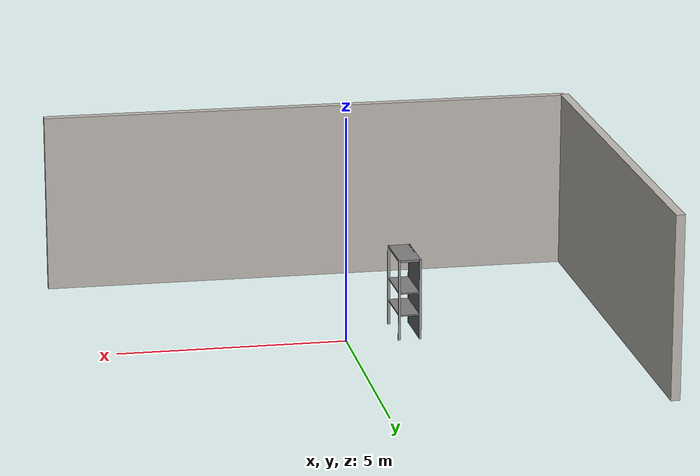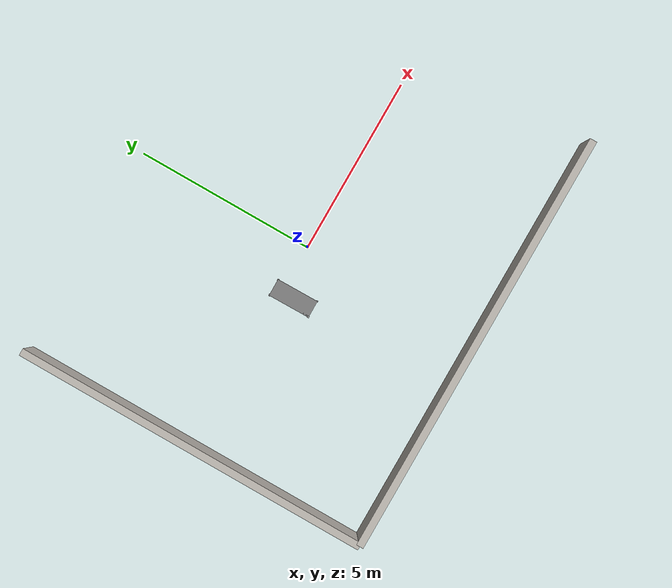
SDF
<sdf version="1.10">
 <world name="warehouse">
  <model name="wall_south">
   <static>true</static>
   <pose>0 -5 2 0 0 0</pose>
   <link name="link">
    <visual name="visual">
     <geometry><box><size>12 0.20000000000000001 4</size></box></geometry>
     <material>
      <ambient>0.75 0.730000019 0.699999988 1</ambient>
      <diffuse>0.75 0.730000019 0.699999988 1</diffuse>
     </material>
    </visual>
    <collision name="collision"><geometry><box><size>12 0.20000000000000001 4</size></box></geometry></collision>
    <inertial>
     <mass>1</mass>
     <inertia><ixx>1</ixx><ixy>0</ixy><ixz>0</ixz><iyy>1</iyy><iyz>0</iyz><izz>1</izz></inertia>
    </inertial>
   </link>
  </model>
  <model name="wall_west">
   <static>true</static>
   <pose>-6 0 2 0 0 0</pose>
   <link name="link">
    <visual name="visual">
     <geometry><box><size>0.20000000000000001 10 4</size></box></geometry>
     <material>
      <ambient>0.75 0.730000019 0.699999988 1</ambient>
      <diffuse>0.75 0.730000019 0.699999988 1</diffuse>
     </material>
    </visual>
    <collision name="collision"><geometry><box><size>0.20000000000000001 10 4</size></box></geometry></collision>
    <inertial>
     <mass>1</mass>
     <inertia><ixx>1</ixx><ixy>0</ixy><ixz>0</ixz><iyy>1</iyy><iyz>0</iyz><izz>1</izz></inertia>
    </inertial>
   </link>
  </model>
  <model name="storage_rack">
   <static>true</static>
   <pose>-1.3448635339736938 -0.34401866793632507 0.04240914061665535 0.0004822450011842844 -0.0034001599457041069 1.5816000039693581</pose>
   <link name="link">
    <visual name="upright_FL">
     <pose>0.57999999999999996 0.23000000000000001 0.90000000000000002 0 0 0</pose>
     <geometry><box><size>0.050000000000000003 0.050000000000000003 1.8</size></box></geometry>
     <material>
      <ambient>0.550000012 0.550000012 0.550000012 1</ambient>
      <diffuse>0.600000024 0.600000024 0.600000024 1</diffuse>
     </material>
    </visual>
    <collision name="upright_FL_col">
     <pose>0.57999999999999996 0.23000000000000001 0.90000000000000002 0 0 0</pose>
     <geometry><box><size>0.050000000000000003 0.050000000000000003 1.8</size></box></geometry>
    </collision>
    <visual name="upright_FR">
     <pose>0.57999999999999996 -0.23000000000000001 0.90000000000000002 0 0 0</pose>
     <geometry><box><size>0.050000000000000003 0.050000000000000003 1.8</size></box></geometry>
     <material>
      <ambient>0.550000012 0.550000012 0.550000012 1</ambient>
      <diffuse>0.600000024 0.600000024 0.600000024 1</diffuse>
     </material>
    </visual>
    <collision name="upright_FR_col">
     <pose>0.57999999999999996 -0.23000000000000001 0.90000000000000002 0 0 0</pose>
     <geometry><box><size>0.050000000000000003 0.050000000000000003 1.8</size></box></geometry>
    </collision>
    <visual name="upright_BL">
     <pose>-0.57999999999999996 0.23000000000000001 0.90000000000000002 0 0 0</pose>
     <geometry><box><size>0.050000000000000003 0.050000000000000003 1.8</size></box></geometry>
     <material>
      <ambient>0.550000012 0.550000012 0.550000012 1</ambient>
      <diffuse>0.600000024 0.600000024 0.600000024 1</diffuse>
     </material>
    </visual>
    <collision name="upright_BL_col">
     <pose>-0.57999999999999996 0.23000000000000001 0.90000000000000002 0 0 0</pose>
     <geometry><box><size>0.050000000000000003 0.050000000000000003 1.8</size></box></geometry>
    </collision>
    <visual name="upright_BR">
     <pose>-0.57999999999999996 -0.23000000000000001 0.90000000000000002 0 0 0</pose>
     <geometry><box><size>0.050000000000000003 0.050000000000000003 1.8</size></box></geometry>
     <material>
      <ambient>0.550000012 0.550000012 0.550000012 1</ambient>
      <diffuse>0.600000024 0.600000024 0.600000024 1</diffuse>
     </material>
    </visual>
    <collision name="upright_BR_col">
     <pose>-0.57999999999999996 -0.23000000000000001 0.90000000000000002 0 0 0</pose>
     <geometry><box><size>0.050000000000000003 0.050000000000000003 1.8</size></box></geometry>
    </collision>
    <visual name="shelf_1_visual">
     <pose>0 0 0.55000000000000004 0 0 0</pose>
     <geometry><box><size>1.1799999999999999 0.47999999999999998 0.029999999999999999</size></box></geometry>
     <material>
      <ambient>0.449999988 0.449999988 0.449999988 1</ambient>
      <diffuse>0.5 0.5 0.5 1</diffuse>
      <specular>0.300000012 0.300000012 0.300000012 1</specular>
     </material>
    </visual>
    <collision name="shelf_1_col">
     <pose>0 0 0.55000000000000004 0 0 0</pose>
     <geometry><box><size>1.1799999999999999 0.47999999999999998 0.029999999999999999</size></box></geometry>
    </collision>
    <visual name="shelf_2_visual">
     <pose>0 0 1.05 0 0 0</pose>
     <geometry><box><size>1.1799999999999999 0.47999999999999998 0.029999999999999999</size></box></geometry>
     <material>
      <ambient>0.449999988 0.449999988 0.449999988 1</ambient>
      <diffuse>0.5 0.5 0.5 1</diffuse>
      <specular>0.300000012 0.300000012 0.300000012 1</specular>
     </material>
    </visual>
    <collision name="shelf_2_col">
     <pose>0 0 1.05 0 0 0</pose>
     <geometry><box><size>1.1799999999999999 0.47999999999999998 0.029999999999999999</size></box></geometry>
    </collision>
    <visual name="top_bar">
     <pose>0 0 1.7749999999999999 0 0 0</pose>
     <geometry><box><size>1.1799999999999999 0.47999999999999998 0.050000000000000003</size></box></geometry>
     <material><ambient>0.449999988 0.449999988 0.449999988 1</ambient><diffuse>0.5 0.5 0.5 1</diffuse></material>
    </visual>
    <visual name="back_panel">
     <pose>0 0.22 0.90000000000000002 0 0 0</pose>
     <geometry><box><size>1.1799999999999999 0.02 1.8</size></box></geometry>
     <material>
      <ambient>0.400000006 0.400000006 0.419999987 1</ambient>
      <diffuse>0.400000006 0.400000006 0.419999987 1</diffuse>
     </material>
    </visual>
    <collision name="back_panel_col">
     <pose>0 0.22 0.90000000000000002 0 0 0</pose>
     <geometry><box><size>1.1799999999999999 0.02 1.8</size></box></geometry>
    </collision>
    <inertial>
     <mass>1</mass>
     <inertia><ixx>1</ixx><ixy>0</ixy><ixz>0</ixz><iyy>1</iyy><iyz>0</iyz><izz>1</izz></inertia>
    </inertial>
   </link>
  </model>
 </world>
</sdf>
